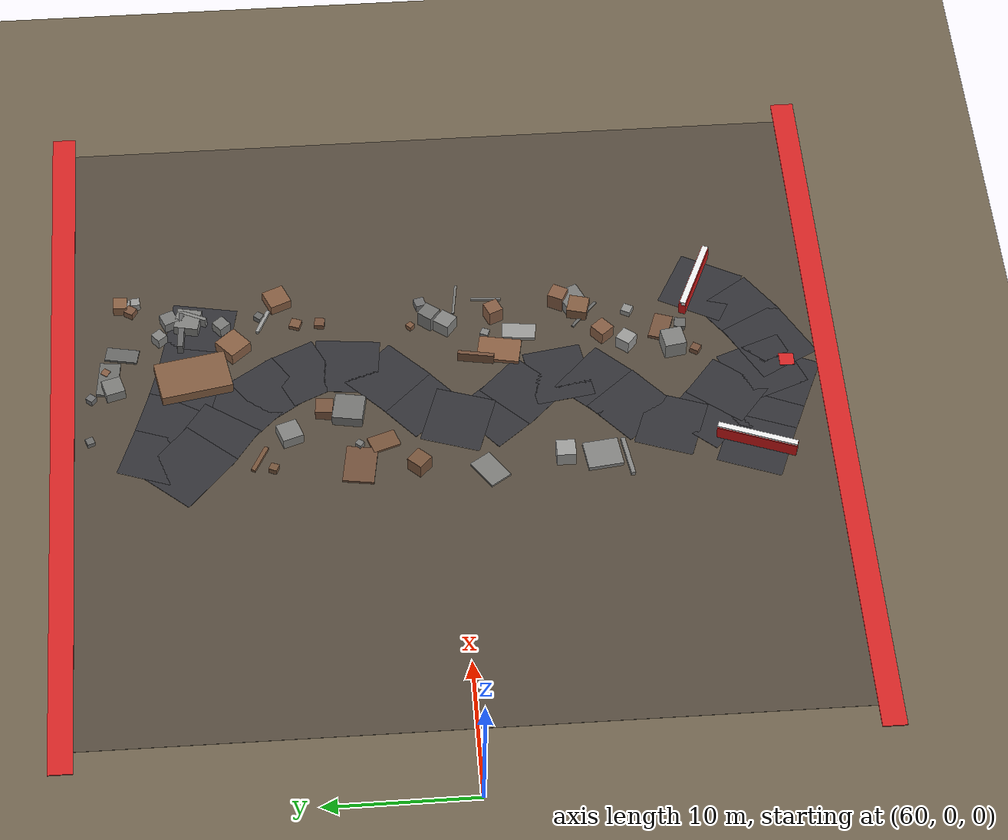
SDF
<sdf version="1.6">
 <world name="navitas_arena">
  <model name="ground_plane">
   <static>true</static>
   <link name="link">
    <collision name="collision">
     <geometry><plane><normal>0 0 1</normal><size>400 400</size></plane></geometry>
     <surface><friction><ode><mu>0.550</mu><mu2>0.550</mu2></ode></friction></surface>
    </collision>
    <visual name="visual">
     <cast_shadows>false</cast_shadows>
     <geometry><plane><normal>0 0 1</normal><size>400 400</size></plane></geometry>
     <material><ambient>0.450 0.400 0.320 1</ambient><diffuse>0.450 0.400 0.320 1</diffuse></material>
    </visual>
   </link>
  </model>
  <model name="gd_zor">
   <static>true</static>
   <pose>90.000 0.000 0.010 0 0 0.000</pose>
   <link name="link">
    <collision name="col"><geometry><box><size>50.000 50.000 0.020</size></box></geometry></collision>
    <visual name="vis">
     <geometry><box><size>50.000 50.000 0.020</size></box></geometry>
     <material><ambient>0.34 0.30 0.25 1</ambient><diffuse>0.34 0.30 0.25 1</diffuse></material>
    </visual>
   </link>
  </model>
  <model name="brd_zor_N">
   <static>true</static>
   <pose>90.000 25.800 0.040 0 0 0.000</pose>
   <link name="link">
    <collision name="col"><geometry><box><size>53.200 1.600 0.080</size></box></geometry></collision>
    <visual name="vis">
     <geometry><box><size>53.200 1.600 0.080</size></box></geometry>
     <material><ambient>0.85 0.15 0.15 1</ambient><diffuse>0.85 0.15 0.15 1</diffuse></material>
    </visual>
   </link>
  </model>
  <model name="brd_zor_S">
   <static>true</static>
   <pose>90.000 -25.800 0.040 0 0 0.000</pose>
   <link name="link">
    <collision name="col"><geometry><box><size>53.200 1.600 0.080</size></box></geometry></collision>
    <visual name="vis">
     <geometry><box><size>53.200 1.600 0.080</size></box></geometry>
     <material><ambient>0.85 0.15 0.15 1</ambient><diffuse>0.85 0.15 0.15 1</diffuse></material>
    </visual>
   </link>
  </model>
  <model name="road_zor_1_0">
   <static>true</static>
   <pose>91.597 -22.399 0.040 0 0 2.739</pose>
   <link name="link">
    <collision name="col"><geometry><box><size>3.970 4.400 0.020</size></box></geometry></collision>
    <visual name="vis">
     <geometry><box><size>3.970 4.400 0.020</size></box></geometry>
     <material><ambient>0.20 0.20 0.22 1</ambient><diffuse>0.20 0.20 0.22 1</diffuse></material>
    </visual>
   </link>
  </model>
  <model name="road_zor_1_1">
   <static>true</static>
   <pose>88.835 -21.236 0.040 0 0 2.747</pose>
   <link name="link">
    <collision name="col"><geometry><box><size>3.823 4.400 0.020</size></box></geometry></collision>
    <visual name="vis">
     <geometry><box><size>3.823 4.400 0.020</size></box></geometry>
     <material><ambient>0.20 0.20 0.22 1</ambient><diffuse>0.20 0.20 0.22 1</diffuse></material>
    </visual>
   </link>
  </model>
  <model name="road_zor_1_2">
   <static>true</static>
   <pose>85.970 -20.087 0.040 0 0 2.772</pose>
   <link name="link">
    <collision name="col"><geometry><box><size>4.150 4.400 0.020</size></box></geometry></collision>
    <visual name="vis">
     <geometry><box><size>4.150 4.400 0.020</size></box></geometry>
     <material><ambient>0.20 0.20 0.22 1</ambient><diffuse>0.20 0.20 0.22 1</diffuse></material>
    </visual>
   </link>
  </model>
  <model name="road_zor_2_0">
   <static>true</static>
   <pose>92.332 -21.250 0.040 0 0 1.940</pose>
   <link name="link">
    <collision name="col"><geometry><box><size>4.653 4.400 0.020</size></box></geometry></collision>
    <visual name="vis">
     <geometry><box><size>4.653 4.400 0.020</size></box></geometry>
     <material><ambient>0.20 0.20 0.22 1</ambient><diffuse>0.20 0.20 0.22 1</diffuse></material>
    </visual>
   </link>
  </model>
  <model name="road_zor_2_1">
   <static>true</static>
   <pose>90.647 -18.696 0.040 0 0 2.469</pose>
   <link name="link">
    <collision name="col"><geometry><box><size>3.479 4.400 0.020</size></box></geometry></collision>
    <visual name="vis">
     <geometry><box><size>3.479 4.400 0.020</size></box></geometry>
     <material><ambient>0.20 0.20 0.22 1</ambient><diffuse>0.20 0.20 0.22 1</diffuse></material>
    </visual>
   </link>
  </model>
  <model name="road_zor_2_2">
   <static>true</static>
   <pose>88.607 -16.984 0.040 0 0 2.420</pose>
   <link name="link">
    <collision name="col"><geometry><box><size>3.649 4.400 0.020</size></box></geometry></collision>
    <visual name="vis">
     <geometry><box><size>3.649 4.400 0.020</size></box></geometry>
     <material><ambient>0.20 0.20 0.22 1</ambient><diffuse>0.20 0.20 0.22 1</diffuse></material>
    </visual>
   </link>
  </model>
  <model name="road_zor_2_3">
   <static>true</static>
   <pose>88.101 -14.629 0.040 0 0 1.222</pose>
   <link name="link">
    <collision name="col"><geometry><box><size>3.979 4.400 0.020</size></box></geometry></collision>
    <visual name="vis">
     <geometry><box><size>3.979 4.400 0.020</size></box></geometry>
     <material><ambient>0.20 0.20 0.22 1</ambient><diffuse>0.20 0.20 0.22 1</diffuse></material>
    </visual>
   </link>
  </model>
  <model name="road_zor_2_4">
   <static>true</static>
   <pose>89.827 -12.157 0.040 0 0 0.708</pose>
   <link name="link">
    <collision name="col"><geometry><box><size>4.055 4.400 0.020</size></box></geometry></collision>
    <visual name="vis">
     <geometry><box><size>4.055 4.400 0.020</size></box></geometry>
     <material><ambient>0.20 0.20 0.22 1</ambient><diffuse>0.20 0.20 0.22 1</diffuse></material>
    </visual>
   </link>
  </model>
  <model name="road_zor_2_5">
   <static>true</static>
   <pose>92.029 -10.077 0.040 0 0 0.810</pose>
   <link name="link">
    <collision name="col"><geometry><box><size>3.812 4.400 0.020</size></box></geometry></collision>
    <visual name="vis">
     <geometry><box><size>3.812 4.400 0.020</size></box></geometry>
     <material><ambient>0.20 0.20 0.22 1</ambient><diffuse>0.20 0.20 0.22 1</diffuse></material>
    </visual>
   </link>
  </model>
  <model name="road_zor_2_6">
   <static>true</static>
   <pose>92.788 -7.511 0.040 0 0 1.732</pose>
   <link name="link">
    <collision name="col"><geometry><box><size>3.962 4.400 0.020</size></box></geometry></collision>
    <visual name="vis">
     <geometry><box><size>3.962 4.400 0.020</size></box></geometry>
     <material><ambient>0.20 0.20 0.22 1</ambient><diffuse>0.20 0.20 0.22 1</diffuse></material>
    </visual>
   </link>
  </model>
  <model name="road_zor_2_7">
   <static>true</static>
   <pose>91.530 -5.000 0.040 0 0 2.362</pose>
   <link name="link">
    <collision name="col"><geometry><box><size>3.745 4.400 0.020</size></box></geometry></collision>
    <visual name="vis">
     <geometry><box><size>3.745 4.400 0.020</size></box></geometry>
     <material><ambient>0.20 0.20 0.22 1</ambient><diffuse>0.20 0.20 0.22 1</diffuse></material>
    </visual>
   </link>
  </model>
  <model name="road_zor_2_8">
   <static>true</static>
   <pose>89.697 -3.000 0.040 0 0 2.259</pose>
   <link name="link">
    <collision name="col"><geometry><box><size>3.489 4.400 0.020</size></box></geometry></collision>
    <visual name="vis">
     <geometry><box><size>3.489 4.400 0.020</size></box></geometry>
     <material><ambient>0.20 0.20 0.22 1</ambient><diffuse>0.20 0.20 0.22 1</diffuse></material>
    </visual>
   </link>
  </model>
  <model name="road_zor_2_9">
   <static>true</static>
   <pose>89.377 -0.500 0.040 0 0 1.248</pose>
   <link name="link">
    <collision name="col"><geometry><box><size>4.064 4.400 0.020</size></box></geometry></collision>
    <visual name="vis">
     <geometry><box><size>4.064 4.400 0.020</size></box></geometry>
     <material><ambient>0.20 0.20 0.22 1</ambient><diffuse>0.20 0.20 0.22 1</diffuse></material>
    </visual>
   </link>
  </model>
  <model name="road_zor_2_10">
   <static>true</static>
   <pose>91.042 2.000 0.040 0 0 0.710</pose>
   <link name="link">
    <collision name="col"><geometry><box><size>3.967 4.400 0.020</size></box></geometry></collision>
    <visual name="vis">
     <geometry><box><size>3.967 4.400 0.020</size></box></geometry>
     <material><ambient>0.20 0.20 0.22 1</ambient><diffuse>0.20 0.20 0.22 1</diffuse></material>
    </visual>
   </link>
  </model>
  <model name="road_zor_2_11">
   <static>true</static>
   <pose>93.235 4.000 0.040 0 0 0.770</pose>
   <link name="link">
    <collision name="col"><geometry><box><size>3.772 4.400 0.020</size></box></geometry></collision>
    <visual name="vis">
     <geometry><box><size>3.772 4.400 0.020</size></box></geometry>
     <material><ambient>0.20 0.20 0.22 1</ambient><diffuse>0.20 0.20 0.22 1</diffuse></material>
    </visual>
   </link>
  </model>
  <model name="road_zor_2_12">
   <static>true</static>
   <pose>94.436 6.713 0.040 0 0 1.471</pose>
   <link name="link">
    <collision name="col"><geometry><box><size>4.343 4.400 0.020</size></box></geometry></collision>
    <visual name="vis">
     <geometry><box><size>4.343 4.400 0.020</size></box></geometry>
     <material><ambient>0.20 0.20 0.22 1</ambient><diffuse>0.20 0.20 0.22 1</diffuse></material>
    </visual>
   </link>
  </model>
  <model name="road_zor_2_13">
   <static>true</static>
   <pose>94.035 9.639 0.040 0 0 2.011</pose>
   <link name="link">
    <collision name="col"><geometry><box><size>3.582 4.400 0.020</size></box></geometry></collision>
    <visual name="vis">
     <geometry><box><size>3.582 4.400 0.020</size></box></geometry>
     <material><ambient>0.20 0.20 0.22 1</ambient><diffuse>0.20 0.20 0.22 1</diffuse></material>
    </visual>
   </link>
  </model>
  <model name="road_zor_2_14">
   <static>true</static>
   <pose>92.733 11.926 0.040 0 0 2.168</pose>
   <link name="link">
    <collision name="col"><geometry><box><size>3.498 4.400 0.020</size></box></geometry></collision>
    <visual name="vis">
     <geometry><box><size>3.498 4.400 0.020</size></box></geometry>
     <material><ambient>0.20 0.20 0.22 1</ambient><diffuse>0.20 0.20 0.22 1</diffuse></material>
    </visual>
   </link>
  </model>
  <model name="road_zor_2_15">
   <static>true</static>
   <pose>91.121 13.861 0.040 0 0 2.368</pose>
   <link name="link">
    <collision name="col"><geometry><box><size>3.364 4.400 0.020</size></box></geometry></collision>
    <visual name="vis">
     <geometry><box><size>3.364 4.400 0.020</size></box></geometry>
     <material><ambient>0.20 0.20 0.22 1</ambient><diffuse>0.20 0.20 0.22 1</diffuse></material>
    </visual>
   </link>
  </model>
  <model name="road_zor_2_16">
   <static>true</static>
   <pose>89.199 15.444 0.040 0 0 2.535</pose>
   <link name="link">
    <collision name="col"><geometry><box><size>3.433 4.400 0.020</size></box></geometry></collision>
    <visual name="vis">
     <geometry><box><size>3.433 4.400 0.020</size></box></geometry>
     <material><ambient>0.20 0.20 0.22 1</ambient><diffuse>0.20 0.20 0.22 1</diffuse></material>
    </visual>
   </link>
  </model>
  <model name="road_zor_2_17">
   <static>true</static>
   <pose>86.619 17.519 0.040 0 0 2.421</pose>
   <link name="link">
    <collision name="col"><geometry><box><size>4.999 4.400 0.020</size></box></geometry></collision>
    <visual name="vis">
     <geometry><box><size>4.999 4.400 0.020</size></box></geometry>
     <material><ambient>0.20 0.20 0.22 1</ambient><diffuse>0.20 0.20 0.22 1</diffuse></material>
    </visual>
   </link>
  </model>
  <model name="road_zor_3_0">
   <static>true</static>
   <pose>94.738 -22.070 0.040 0 0 0.494</pose>
   <link name="link">
    <collision name="col"><geometry><box><size>4.825 4.400 0.020</size></box></geometry></collision>
    <visual name="vis">
     <geometry><box><size>4.825 4.400 0.020</size></box></geometry>
     <material><ambient>0.20 0.20 0.22 1</ambient><diffuse>0.20 0.20 0.22 1</diffuse></material>
    </visual>
   </link>
  </model>
  <model name="road_zor_3_1">
   <static>true</static>
   <pose>97.661 -20.320 0.040 0 0 0.602</pose>
   <link name="link">
    <collision name="col"><geometry><box><size>3.798 4.400 0.020</size></box></geometry></collision>
    <visual name="vis">
     <geometry><box><size>3.798 4.400 0.020</size></box></geometry>
     <material><ambient>0.20 0.20 0.22 1</ambient><diffuse>0.20 0.20 0.22 1</diffuse></material>
    </visual>
   </link>
  </model>
  <model name="road_zor_3_2">
   <static>true</static>
   <pose>99.699 -17.912 0.040 0 0 1.082</pose>
   <link name="link">
    <collision name="col"><geometry><box><size>4.497 4.400 0.020</size></box></geometry></collision>
    <visual name="vis">
     <geometry><box><size>4.497 4.400 0.020</size></box></geometry>
     <material><ambient>0.20 0.20 0.22 1</ambient><diffuse>0.20 0.20 0.22 1</diffuse></material>
    </visual>
   </link>
  </model>
  <model name="road_zor_3_21">
   <static>true</static>
   <pose>98.405 16.435 0.040 0 0 2.952</pose>
   <link name="link">
    <collision name="col"><geometry><box><size>3.744 4.400 0.020</size></box></geometry></collision>
    <visual name="vis">
     <geometry><box><size>3.744 4.400 0.020</size></box></geometry>
     <material><ambient>0.20 0.20 0.22 1</ambient><diffuse>0.20 0.20 0.22 1</diffuse></material>
    </visual>
   </link>
  </model>
  <model name="road_zor_3_22">
   <static>true</static>
   <pose>95.794 16.969 0.040 0 0 2.927</pose>
   <link name="link">
    <collision name="col"><geometry><box><size>3.386 4.400 0.020</size></box></geometry></collision>
    <visual name="vis">
     <geometry><box><size>3.386 4.400 0.020</size></box></geometry>
     <material><ambient>0.20 0.20 0.22 1</ambient><diffuse>0.20 0.20 0.22 1</diffuse></material>
    </visual>
   </link>
  </model>
  <model name="road_zor_3_23">
   <static>true</static>
   <pose>93.232 17.622 0.040 0 0 2.861</pose>
   <link name="link">
    <collision name="col"><geometry><box><size>3.703 4.400 0.020</size></box></geometry></collision>
    <visual name="vis">
     <geometry><box><size>3.703 4.400 0.020</size></box></geometry>
     <material><ambient>0.20 0.20 0.22 1</ambient><diffuse>0.20 0.20 0.22 1</diffuse></material>
    </visual>
   </link>
  </model>
  <model name="road_zor_3_24">
   <static>true</static>
   <pose>90.334 18.524 0.040 0 0 2.821</pose>
   <link name="link">
    <collision name="col"><geometry><box><size>4.170 4.400 0.020</size></box></geometry></collision>
    <visual name="vis">
     <geometry><box><size>4.170 4.400 0.020</size></box></geometry>
     <material><ambient>0.20 0.20 0.22 1</ambient><diffuse>0.20 0.20 0.22 1</diffuse></material>
    </visual>
   </link>
  </model>
  <model name="road_zor_3_25">
   <static>true</static>
   <pose>87.469 19.514 0.040 0 0 2.795</pose>
   <link name="link">
    <collision name="col"><geometry><box><size>3.692 4.400 0.020</size></box></geometry></collision>
    <visual name="vis">
     <geometry><box><size>3.692 4.400 0.020</size></box></geometry>
     <material><ambient>0.20 0.20 0.22 1</ambient><diffuse>0.20 0.20 0.22 1</diffuse></material>
    </visual>
   </link>
  </model>
  <model name="bar_zor_1">
   <static>true</static>
   <pose>85.995 -20.083 0.500 0 0 4.350</pose>
   <link name="link">
    <collision name="col"><geometry><box><size>5.400 0.500 1.000</size></box></geometry></collision>
    <visual name="vis">
     <geometry><box><size>5.400 0.500 1.000</size></box></geometry>
     <material><ambient>0.85 0.10 0.10 1</ambient><diffuse>0.85 0.10 0.10 1</diffuse></material>
    </visual>
   </link>
  </model>
  <model name="bar_zor_1b">
   <static>true</static>
   <pose>85.995 -20.083 1.000 0 0 4.350</pose>
   <link name="link">
    <collision name="col"><geometry><box><size>5.400 0.400 0.300</size></box></geometry></collision>
    <visual name="vis">
     <geometry><box><size>5.400 0.400 0.300</size></box></geometry>
     <material><ambient>0.95 0.95 0.95 1</ambient><diffuse>0.95 0.95 0.95 1</diffuse></material>
    </visual>
   </link>
  </model>
  <model name="bar_zor_3">
   <static>true</static>
   <pose>100.046 -17.469 0.500 0 0 2.732</pose>
   <link name="link">
    <collision name="col"><geometry><box><size>5.400 0.500 1.000</size></box></geometry></collision>
    <visual name="vis">
     <geometry><box><size>5.400 0.500 1.000</size></box></geometry>
     <material><ambient>0.85 0.10 0.10 1</ambient><diffuse>0.85 0.10 0.10 1</diffuse></material>
    </visual>
   </link>
  </model>
  <model name="bar_zor_3b">
   <static>true</static>
   <pose>100.046 -17.469 1.000 0 0 2.732</pose>
   <link name="link">
    <collision name="col"><geometry><box><size>5.400 0.400 0.300</size></box></geometry></collision>
    <visual name="vis">
     <geometry><box><size>5.400 0.400 0.300</size></box></geometry>
     <material><ambient>0.95 0.95 0.95 1</ambient><diffuse>0.95 0.95 0.95 1</diffuse></material>
    </visual>
   </link>
  </model>
  <model name="blk_zor_3_2_0">
   <static>true</static>
   <pose>98.198 15.019 0.400 0 0 2.259</pose>
   <link name="link">
    <collision name="col"><geometry><box><size>0.882 0.882 0.800</size></box></geometry></collision>
    <visual name="vis">
     <geometry><box><size>0.882 0.882 0.800</size></box></geometry>
     <material><ambient>0.48 0.48 0.47 1</ambient><diffuse>0.48 0.48 0.47 1</diffuse></material>
    </visual>
   </link>
  </model>
  <model name="blk_zor_3_2_1">
   <static>true</static>
   <pose>99.076 17.009 0.400 0 0 1.139</pose>
   <link name="link">
    <collision name="col"><geometry><box><size>2.122 0.255 0.800</size></box></geometry></collision>
    <visual name="vis">
     <geometry><box><size>2.122 0.255 0.800</size></box></geometry>
     <material><ambient>0.53 0.53 0.52 1</ambient><diffuse>0.53 0.53 0.52 1</diffuse></material>
    </visual>
   </link>
  </model>
  <model name="blk_zor_3_2_2">
   <static>true</static>
   <pose>98.737 17.278 0.400 0 0 2.937</pose>
   <link name="link">
    <collision name="col"><geometry><box><size>1.651 1.651 0.800</size></box></geometry></collision>
    <visual name="vis">
     <geometry><box><size>1.651 1.651 0.800</size></box></geometry>
     <material><ambient>0.51 0.51 0.50 1</ambient><diffuse>0.51 0.51 0.50 1</diffuse></material>
    </visual>
   </link>
  </model>
  <model name="blk_zor_3_2_3">
   <static>true</static>
   <pose>96.343 14.267 0.465 0 0 0.716</pose>
   <link name="link">
    <collision name="col"><geometry><box><size>1.696 1.696 0.930</size></box></geometry></collision>
    <visual name="vis">
     <geometry><box><size>1.696 1.696 0.930</size></box></geometry>
     <material><ambient>0.54 0.38 0.27 1</ambient><diffuse>0.54 0.38 0.27 1</diffuse></material>
    </visual>
   </link>
  </model>
  <model name="blk_zor_3_2_4">
   <static>true</static>
   <pose>97.433 19.236 0.400 0 0 2.275</pose>
   <link name="link">
    <collision name="col"><geometry><box><size>0.767 0.767 0.800</size></box></geometry></collision>
    <visual name="vis">
     <geometry><box><size>0.767 0.767 0.800</size></box></geometry>
     <material><ambient>0.52 0.52 0.51 1</ambient><diffuse>0.52 0.52 0.51 1</diffuse></material>
    </visual>
   </link>
  </model>
  <model name="blk_zor_3_2_5">
   <static>true</static>
   <pose>98.906 18.561 0.400 0 0 1.975</pose>
   <link name="link">
    <collision name="col"><geometry><box><size>1.002 1.002 0.800</size></box></geometry></collision>
    <visual name="vis">
     <geometry><box><size>1.002 1.002 0.800</size></box></geometry>
     <material><ambient>0.48 0.48 0.47 1</ambient><diffuse>0.48 0.48 0.47 1</diffuse></material>
    </visual>
   </link>
  </model>
  <model name="blk_zor_3_2_6">
   <static>true</static>
   <pose>97.850 17.729 0.400 0 0 3.069</pose>
   <link name="link">
    <collision name="col"><geometry><box><size>2.920 0.400 0.800</size></box></geometry></collision>
    <visual name="vis">
     <geometry><box><size>2.920 0.400 0.800</size></box></geometry>
     <material><ambient>0.40 0.40 0.40 1</ambient><diffuse>0.40 0.40 0.40 1</diffuse></material>
    </visual>
   </link>
  </model>
  <model name="deb_zor_4">
   <static>true</static>
   <pose>85.429 -11.448 0.157 0 0 0.143</pose>
   <link name="link">
    <collision name="col"><geometry><box><size>2.974 0.292 0.313</size></box></geometry></collision>
    <visual name="vis">
     <geometry><box><size>2.974 0.292 0.313</size></box></geometry>
     <material><ambient>0.53 0.53 0.52 1</ambient><diffuse>0.53 0.53 0.52 1</diffuse></material>
    </visual>
   </link>
  </model>
  <model name="deb_zor_6">
   <static>true</static>
   <pose>92.563 23.852 0.228 0 0 0.870</pose>
   <link name="link">
    <collision name="col"><geometry><box><size>0.524 0.524 0.456</size></box></geometry></collision>
    <visual name="vis">
     <geometry><box><size>0.524 0.524 0.456</size></box></geometry>
     <material><ambient>0.43 0.43 0.43 1</ambient><diffuse>0.43 0.43 0.43 1</diffuse></material>
    </visual>
   </link>
  </model>
  <model name="deb_zor_12">
   <static>true</static>
   <pose>99.780 -0.956 0.078 0 0 2.998</pose>
   <link name="link">
    <collision name="col"><geometry><box><size>2.488 0.160 0.157</size></box></geometry></collision>
    <visual name="vis">
     <geometry><box><size>2.488 0.160 0.157</size></box></geometry>
     <material><ambient>0.49 0.49 0.48 1</ambient><diffuse>0.49 0.49 0.48 1</diffuse></material>
    </visual>
   </link>
  </model>
  <model name="deb_zor_13">
   <static>true</static>
   <pose>85.543 2.308 0.548 0 0 0.817</pose>
   <link name="link">
    <collision name="col"><geometry><box><size>1.165 1.165 1.095</size></box></geometry></collision>
    <visual name="vis">
     <geometry><box><size>1.165 1.165 1.095</size></box></geometry>
     <material><ambient>0.47 0.33 0.23 1</ambient><diffuse>0.47 0.33 0.23 1</diffuse></material>
    </visual>
   </link>
  </model>
  <model name="deb_zor_14">
   <static>true</static>
   <pose>94.231 -16.939 0.212 0 0 1.026</pose>
   <link name="link">
    <collision name="col"><geometry><box><size>0.603 0.603 0.424</size></box></geometry></collision>
    <visual name="vis">
     <geometry><box><size>0.603 0.603 0.424</size></box></geometry>
     <material><ambient>0.46 0.32 0.23 1</ambient><diffuse>0.46 0.32 0.23 1</diffuse></material>
    </visual>
   </link>
  </model>
  <model name="deb_zor_16">
   <static>true</static>
   <pose>97.876 -9.710 0.066 0 0 2.429</pose>
   <link name="link">
    <collision name="col"><geometry><box><size>2.697 0.192 0.132</size></box></geometry></collision>
    <visual name="vis">
     <geometry><box><size>2.697 0.192 0.132</size></box></geometry>
     <material><ambient>0.41 0.41 0.40 1</ambient><diffuse>0.41 0.41 0.40 1</diffuse></material>
    </visual>
   </link>
  </model>
  <model name="deb_zor_19">
   <static>true</static>
   <pose>93.697 22.288 0.213 0 0 0.580</pose>
   <link name="link">
    <collision name="col"><geometry><box><size>0.503 0.503 0.425</size></box></geometry></collision>
    <visual name="vis">
     <geometry><box><size>0.503 0.503 0.425</size></box></geometry>
     <material><ambient>0.51 0.51 0.50 1</ambient><diffuse>0.51 0.51 0.50 1</diffuse></material>
    </visual>
   </link>
  </model>
  <model name="deb_zor_25">
   <static>true</static>
   <pose>94.861 22.893 0.128 0 0 2.557</pose>
   <link name="link">
    <collision name="col"><geometry><box><size>0.514 0.514 0.256</size></box></geometry></collision>
    <visual name="vis">
     <geometry><box><size>0.514 0.514 0.256</size></box></geometry>
     <material><ambient>0.53 0.37 0.27 1</ambient><diffuse>0.53 0.37 0.27 1</diffuse></material>
    </visual>
   </link>
  </model>
  <model name="deb_zor_28">
   <static>true</static>
   <pose>90.594 8.356 0.399 0 0 1.478</pose>
   <link name="link">
    <collision name="col"><geometry><box><size>1.160 1.160 0.798</size></box></geometry></collision>
    <visual name="vis">
     <geometry><box><size>1.160 1.160 0.798</size></box></geometry>
     <material><ambient>0.47 0.33 0.24 1</ambient><diffuse>0.47 0.33 0.24 1</diffuse></material>
    </visual>
   </link>
  </model>
  <model name="deb_zor_31">
   <static>true</static>
   <pose>95.035 -12.293 0.505 0 0 2.454</pose>
   <link name="link">
    <collision name="col"><geometry><box><size>1.034 1.034 1.011</size></box></geometry></collision>
    <visual name="vis">
     <geometry><box><size>1.034 1.034 1.011</size></box></geometry>
     <material><ambient>0.61 0.61 0.60 1</ambient><diffuse>0.61 0.61 0.60 1</diffuse></material>
    </visual>
   </link>
  </model>
  <model name="deb_zor_41">
   <static>true</static>
   <pose>88.633 10.733 0.414 0 0 1.902</pose>
   <link name="link">
    <collision name="col"><geometry><box><size>1.434 1.434 0.827</size></box></geometry></collision>
    <visual name="vis">
     <geometry><box><size>1.434 1.434 0.827</size></box></geometry>
     <material><ambient>0.51 0.51 0.50 1</ambient><diffuse>0.51 0.51 0.50 1</diffuse></material>
    </visual>
   </link>
  </model>
  <model name="deb_zor_44">
   <static>true</static>
   <pose>98.210 8.349 0.194 0 0 1.415</pose>
   <link name="link">
    <collision name="col"><geometry><box><size>0.679 0.679 0.387</size></box></geometry></collision>
    <visual name="vis">
     <geometry><box><size>0.679 0.679 0.387</size></box></geometry>
     <material><ambient>0.46 0.32 0.23 1</ambient><diffuse>0.46 0.32 0.23 1</diffuse></material>
    </visual>
   </link>
  </model>
  <model name="deb_zor_45">
   <static>true</static>
   <pose>85.721 -9.825 0.155 0 0 1.695</pose>
   <link name="link">
    <collision name="col"><geometry><box><size>2.364 2.124 0.309</size></box></geometry></collision>
    <visual name="vis">
     <geometry><box><size>2.364 2.124 0.309</size></box></geometry>
     <material><ambient>0.52 0.52 0.51 1</ambient><diffuse>0.52 0.52 0.51 1</diffuse></material>
    </visual>
   </link>
  </model>
  <model name="deb_zor_47">
   <static>true</static>
   <pose>85.009 -2.326 0.081 0 0 0.593</pose>
   <link name="link">
    <collision name="col"><geometry><box><size>2.315 1.572 0.162</size></box></geometry></collision>
    <visual name="vis">
     <geometry><box><size>2.315 1.572 0.162</size></box></geometry>
     <material><ambient>0.49 0.49 0.48 1</ambient><diffuse>0.49 0.49 0.48 1</diffuse></material>
    </visual>
   </link>
  </model>
  <model name="deb_zor_48">
   <static>true</static>
   <pose>94.542 -15.420 0.638 0 0 0.164</pose>
   <link name="link">
    <collision name="col"><geometry><box><size>1.468 1.468 1.276</size></box></geometry></collision>
    <visual name="vis">
     <geometry><box><size>1.468 1.468 1.276</size></box></geometry>
     <material><ambient>0.51 0.51 0.50 1</ambient><diffuse>0.51 0.51 0.50 1</diffuse></material>
    </visual>
   </link>
  </model>
  <model name="deb_zor_51">
   <static>true</static>
   <pose>85.758 -7.355 0.543 0 0 1.570</pose>
   <link name="link">
    <collision name="col"><geometry><box><size>1.260 1.260 1.086</size></box></geometry></collision>
    <visual name="vis">
     <geometry><box><size>1.260 1.260 1.086</size></box></geometry>
     <material><ambient>0.62 0.62 0.61 1</ambient><diffuse>0.62 0.62 0.61 1</diffuse></material>
    </visual>
   </link>
  </model>
  <model name="deb_zor_54">
   <static>true</static>
   <pose>97.923 0.918 0.621 0 0 2.486</pose>
   <link name="link">
    <collision name="col"><geometry><box><size>1.096 1.096 1.242</size></box></geometry></collision>
    <visual name="vis">
     <geometry><box><size>1.096 1.096 1.242</size></box></geometry>
     <material><ambient>0.45 0.45 0.44 1</ambient><diffuse>0.45 0.45 0.44 1</diffuse></material>
    </visual>
   </link>
  </model>
  <model name="deb_zor_59">
   <static>true</static>
   <pose>86.864 12.771 0.123 0 0 2.667</pose>
   <link name="link">
    <collision name="col"><geometry><box><size>2.076 0.293 0.245</size></box></geometry></collision>
    <visual name="vis">
     <geometry><box><size>2.076 0.293 0.245</size></box></geometry>
     <material><ambient>0.47 0.33 0.23 1</ambient><diffuse>0.47 0.33 0.23 1</diffuse></material>
    </visual>
   </link>
  </model>
  <model name="deb_zor_61">
   <static>true</static>
   <pose>96.326 -14.787 0.143 0 0 2.809</pose>
   <link name="link">
    <collision name="col"><geometry><box><size>2.034 1.255 0.287</size></box></geometry></collision>
    <visual name="vis">
     <geometry><box><size>2.034 1.255 0.287</size></box></geometry>
     <material><ambient>0.47 0.33 0.24 1</ambient><diffuse>0.47 0.33 0.24 1</diffuse></material>
    </visual>
   </link>
  </model>
  <model name="deb_zor_68">
   <static>true</static>
   <pose>100.669 21.545 0.217 0 0 1.585</pose>
   <link name="link">
    <collision name="col"><geometry><box><size>0.669 0.669 0.434</size></box></geometry></collision>
    <visual name="vis">
     <geometry><box><size>0.669 0.669 0.434</size></box></geometry>
     <material><ambient>0.56 0.56 0.55 1</ambient><diffuse>0.56 0.56 0.55 1</diffuse></material>
    </visual>
   </link>
  </model>
  <model name="deb_zor_69">
   <static>true</static>
   <pose>98.261 9.986 0.166 0 0 2.803</pose>
   <link name="link">
    <collision name="col"><geometry><box><size>0.722 0.722 0.331</size></box></geometry></collision>
    <visual name="vis">
     <geometry><box><size>0.722 0.722 0.331</size></box></geometry>
     <material><ambient>0.50 0.35 0.25 1</ambient><diffuse>0.50 0.35 0.25 1</diffuse></material>
    </visual>
   </link>
  </model>
  <model name="deb_zor_71">
   <static>true</static>
   <pose>96.470 -16.118 0.211 0 0 2.988</pose>
   <link name="link">
    <collision name="col"><geometry><box><size>0.758 0.758 0.422</size></box></geometry></collision>
    <visual name="vis">
     <geometry><box><size>0.758 0.758 0.422</size></box></geometry>
     <material><ambient>0.42 0.42 0.41 1</ambient><diffuse>0.42 0.42 0.41 1</diffuse></material>
    </visual>
   </link>
  </model>
  <model name="deb_zor_79">
   <static>true</static>
   <pose>95.978 -10.748 0.499 0 0 2.276</pose>
   <link name="link">
    <collision name="col"><geometry><box><size>1.101 1.101 0.998</size></box></geometry></collision>
    <visual name="vis">
     <geometry><box><size>1.101 1.101 0.998</size></box></geometry>
     <material><ambient>0.53 0.37 0.27 1</ambient><diffuse>0.53 0.37 0.27 1</diffuse></material>
    </visual>
   </link>
  </model>
  <model name="deb_zor_92">
   <static>true</static>
   <pose>87.560 6.140 0.232 0 0 0.849</pose>
   <link name="link">
    <collision name="col"><geometry><box><size>0.445 0.445 0.464</size></box></geometry></collision>
    <visual name="vis">
     <geometry><box><size>0.445 0.445 0.464</size></box></geometry>
     <material><ambient>0.47 0.47 0.46 1</ambient><diffuse>0.47 0.47 0.46 1</diffuse></material>
    </visual>
   </link>
  </model>
  <model name="deb_zor_96">
   <static>true</static>
   <pose>98.074 -3.471 0.597 0 0 1.976</pose>
   <link name="link">
    <collision name="col"><geometry><box><size>1.017 1.017 1.194</size></box></geometry></collision>
    <visual name="vis">
     <geometry><box><size>1.017 1.017 1.194</size></box></geometry>
     <material><ambient>0.53 0.37 0.27 1</ambient><diffuse>0.53 0.37 0.27 1</diffuse></material>
    </visual>
   </link>
  </model>
  <model name="deb_zor_97">
   <static>true</static>
   <pose>96.613 -5.139 0.124 0 0 1.472</pose>
   <link name="link">
    <collision name="col"><geometry><box><size>2.256 1.238 0.248</size></box></geometry></collision>
    <visual name="vis">
     <geometry><box><size>2.256 1.238 0.248</size></box></geometry>
     <material><ambient>0.61 0.61 0.60 1</ambient><diffuse>0.61 0.61 0.60 1</diffuse></material>
    </visual>
   </link>
  </model>
  <model name="deb_zor_99">
   <static>true</static>
   <pose>99.686 -3.113 0.078 0 0 1.492</pose>
   <link name="link">
    <collision name="col"><geometry><box><size>2.049 0.153 0.157</size></box></geometry></collision>
    <visual name="vis">
     <geometry><box><size>2.049 0.153 0.157</size></box></geometry>
     <material><ambient>0.55 0.55 0.54 1</ambient><diffuse>0.55 0.55 0.54 1</diffuse></material>
    </visual>
   </link>
  </model>
  <model name="deb_zor_102">
   <static>true</static>
   <pose>98.212 -9.312 0.417 0 0 2.883</pose>
   <link name="link">
    <collision name="col"><geometry><box><size>1.362 1.362 0.834</size></box></geometry></collision>
    <visual name="vis">
     <geometry><box><size>1.362 1.362 0.834</size></box></geometry>
     <material><ambient>0.52 0.37 0.26 1</ambient><diffuse>0.52 0.37 0.26 1</diffuse></material>
    </visual>
   </link>
  </model>
  <model name="deb_zor_110">
   <static>true</static>
   <pose>100.525 21.868 0.368 0 0 3.120</pose>
   <link name="link">
    <collision name="col"><geometry><box><size>0.947 0.947 0.736</size></box></geometry></collision>
    <visual name="vis">
     <geometry><box><size>0.947 0.947 0.736</size></box></geometry>
     <material><ambient>0.54 0.38 0.27 1</ambient><diffuse>0.54 0.38 0.27 1</diffuse></material>
    </visual>
   </link>
  </model>
  <model name="deb_zor_113">
   <static>true</static>
   <pose>97.350 -0.158 0.520 0 0 2.489</pose>
   <link name="link">
    <collision name="col"><geometry><box><size>1.163 1.163 1.039</size></box></geometry></collision>
    <visual name="vis">
     <geometry><box><size>1.163 1.163 1.039</size></box></geometry>
     <material><ambient>0.52 0.52 0.51 1</ambient><diffuse>0.52 0.52 0.51 1</diffuse></material>
    </visual>
   </link>
  </model>
  <model name="deb_zor_115">
   <static>true</static>
   <pose>100.017 21.182 0.261 0 0 1.003</pose>
   <link name="link">
    <collision name="col"><geometry><box><size>0.659 0.659 0.522</size></box></geometry></collision>
    <visual name="vis">
     <geometry><box><size>0.659 0.659 0.522</size></box></geometry>
     <material><ambient>0.49 0.34 0.25 1</ambient><diffuse>0.49 0.34 0.25 1</diffuse></material>
    </visual>
   </link>
  </model>
  <model name="deb_zor_117">
   <static>true</static>
   <pose>95.066 -3.671 0.151 0 0 1.383</pose>
   <link name="link">
    <collision name="col"><geometry><box><size>2.870 1.921 0.301</size></box></geometry></collision>
    <visual name="vis">
     <geometry><box><size>2.870 1.921 0.301</size></box></geometry>
     <material><ambient>0.55 0.38 0.27 1</ambient><diffuse>0.55 0.38 0.27 1</diffuse></material>
    </visual>
   </link>
  </model>
  <model name="deb_zor_119">
   <static>true</static>
   <pose>89.009 23.936 0.173 0 0 1.940</pose>
   <link name="link">
    <collision name="col"><geometry><box><size>0.537 0.537 0.346</size></box></geometry></collision>
    <visual name="vis">
     <geometry><box><size>0.537 0.537 0.346</size></box></geometry>
     <material><ambient>0.42 0.42 0.41 1</ambient><diffuse>0.42 0.42 0.41 1</diffuse></material>
    </visual>
   </link>
  </model>
  <model name="deb_zor_120">
   <static>true</static>
   <pose>85.967 11.871 0.220 0 0 2.726</pose>
   <link name="link">
    <collision name="col"><geometry><box><size>0.553 0.553 0.440</size></box></geometry></collision>
    <visual name="vis">
     <geometry><box><size>0.553 0.553 0.440</size></box></geometry>
     <material><ambient>0.46 0.33 0.23 1</ambient><diffuse>0.46 0.33 0.23 1</diffuse></material>
    </visual>
   </link>
  </model>
  <model name="deb_zor_124">
   <static>true</static>
   <pose>97.932 -12.649 0.226 0 0 2.646</pose>
   <link name="link">
    <collision name="col"><geometry><box><size>0.658 0.658 0.453</size></box></geometry></collision>
    <visual name="vis">
     <geometry><box><size>0.658 0.658 0.453</size></box></geometry>
     <material><ambient>0.57 0.57 0.56 1</ambient><diffuse>0.57 0.57 0.56 1</diffuse></material>
    </visual>
   </link>
  </model>
  <model name="deb_zor_125">
   <static>true</static>
   <pose>100.338 11.189 0.375 0 0 1.974</pose>
   <link name="link">
    <collision name="col"><geometry><box><size>1.502 1.502 0.750</size></box></geometry></collision>
    <visual name="vis">
     <geometry><box><size>1.502 1.502 0.750</size></box></geometry>
     <material><ambient>0.53 0.37 0.26 1</ambient><diffuse>0.53 0.37 0.26 1</diffuse></material>
    </visual>
   </link>
  </model>
  <model name="deb_zor_127">
   <static>true</static>
   <pose>87.790 4.539 0.098 0 0 1.900</pose>
   <link name="link">
    <collision name="col"><geometry><box><size>1.901 1.284 0.197</size></box></geometry></collision>
    <visual name="vis">
     <geometry><box><size>1.901 1.284 0.197</size></box></geometry>
     <material><ambient>0.47 0.33 0.23 1</ambient><diffuse>0.47 0.33 0.23 1</diffuse></material>
    </visual>
   </link>
  </model>
  <model name="deb_zor_137">
   <static>true</static>
   <pose>96.354 21.791 0.092 0 0 1.380</pose>
   <link name="link">
    <collision name="col"><geometry><box><size>2.199 1.076 0.184</size></box></geometry></collision>
    <visual name="vis">
     <geometry><box><size>2.199 1.076 0.184</size></box></geometry>
     <material><ambient>0.41 0.41 0.40 1</ambient><diffuse>0.41 0.41 0.40 1</diffuse></material>
    </visual>
   </link>
  </model>
  <model name="deb_zor_140">
   <static>true</static>
   <pose>98.658 12.207 0.122 0 0 2.710</pose>
   <link name="link">
    <collision name="col"><geometry><box><size>1.990 0.237 0.244</size></box></geometry></collision>
    <visual name="vis">
     <geometry><box><size>1.990 0.237 0.244</size></box></geometry>
     <material><ambient>0.62 0.62 0.61 1</ambient><diffuse>0.62 0.62 0.61 1</diffuse></material>
    </visual>
   </link>
  </model>
  <model name="deb_zor_154">
   <static>true</static>
   <pose>93.212 22.357 0.400 0 0 1.857</pose>
   <link name="link">
    <collision name="col"><geometry><box><size>1.304 1.304 0.800</size></box></geometry></collision>
    <visual name="vis">
     <geometry><box><size>1.304 1.304 0.800</size></box></geometry>
     <material><ambient>0.49 0.49 0.48 1</ambient><diffuse>0.49 0.49 0.48 1</diffuse></material>
    </visual>
   </link>
  </model>
  <model name="deb_zor_157">
   <static>true</static>
   <pose>98.982 -8.916 0.414 0 0 1.980</pose>
   <link name="link">
    <collision name="col"><geometry><box><size>1.556 1.556 0.827</size></box></geometry></collision>
    <visual name="vis">
     <geometry><box><size>1.556 1.556 0.827</size></box></geometry>
     <material><ambient>0.48 0.48 0.47 1</ambient><diffuse>0.48 0.48 0.47 1</diffuse></material>
    </visual>
   </link>
  </model>
  <model name="deb_zor_168">
   <static>true</static>
   <pose>85.968 6.197 0.096 0 0 2.990</pose>
   <link name="link">
    <collision name="col"><geometry><box><size>2.866 2.095 0.192</size></box></geometry></collision>
    <visual name="vis">
     <geometry><box><size>2.866 2.095 0.192</size></box></geometry>
     <material><ambient>0.45 0.32 0.23 1</ambient><diffuse>0.45 0.32 0.23 1</diffuse></material>
    </visual>
   </link>
  </model>
  <model name="deb_zor_169">
   <static>true</static>
   <pose>96.655 -2.832 0.142 0 0 1.145</pose>
   <link name="link">
    <collision name="col"><geometry><box><size>0.537 0.537 0.284</size></box></geometry></collision>
    <visual name="vis">
     <geometry><box><size>0.537 0.537 0.284</size></box></geometry>
     <material><ambient>0.52 0.52 0.51 1</ambient><diffuse>0.52 0.52 0.51 1</diffuse></material>
    </visual>
   </link>
  </model>
  <model name="deb_zor_170">
   <static>true</static>
   <pose>99.021 12.455 0.215 0 0 2.496</pose>
   <link name="link">
    <collision name="col"><geometry><box><size>0.528 0.528 0.431</size></box></geometry></collision>
    <visual name="vis">
     <geometry><box><size>0.528 0.528 0.431</size></box></geometry>
     <material><ambient>0.41 0.41 0.40 1</ambient><diffuse>0.41 0.41 0.40 1</diffuse></material>
    </visual>
   </link>
  </model>
  <model name="deb_zor_171">
   <static>true</static>
   <pose>99.398 1.448 0.259 0 0 0.241</pose>
   <link name="link">
    <collision name="col"><geometry><box><size>0.706 0.706 0.517</size></box></geometry></collision>
    <visual name="vis">
     <geometry><box><size>0.706 0.706 0.517</size></box></geometry>
     <material><ambient>0.44 0.44 0.44 1</ambient><diffuse>0.44 0.44 0.44 1</diffuse></material>
    </visual>
   </link>
  </model>
  <model name="deb_zor_176">
   <static>true</static>
   <pose>94.312 22.713 0.101 0 0 3.036</pose>
   <link name="link">
    <collision name="col"><geometry><box><size>2.717 1.393 0.203</size></box></geometry></collision>
    <visual name="vis">
     <geometry><box><size>2.717 1.393 0.203</size></box></geometry>
     <material><ambient>0.43 0.43 0.42 1</ambient><diffuse>0.43 0.43 0.42 1</diffuse></material>
    </visual>
   </link>
  </model>
  <model name="deb_zor_177">
   <static>true</static>
   <pose>100.720 20.852 0.268 0 0 1.689</pose>
   <link name="link">
    <collision name="col"><geometry><box><size>0.610 0.610 0.535</size></box></geometry></collision>
    <visual name="vis">
     <geometry><box><size>0.610 0.610 0.535</size></box></geometry>
     <material><ambient>0.60 0.60 0.59 1</ambient><diffuse>0.60 0.60 0.59 1</diffuse></material>
    </visual>
   </link>
  </model>
  <model name="deb_zor_181">
   <static>true</static>
   <pose>99.029 -7.991 0.617 0 0 2.662</pose>
   <link name="link">
    <collision name="col"><geometry><box><size>1.092 1.092 1.233</size></box></geometry></collision>
    <visual name="vis">
     <geometry><box><size>1.092 1.092 1.233</size></box></geometry>
     <material><ambient>0.53 0.37 0.27 1</ambient><diffuse>0.53 0.37 0.27 1</diffuse></material>
    </visual>
   </link>
  </model>
  <model name="deb_zor_185">
   <static>true</static>
   <pose>97.527 2.200 0.195 0 0 2.353</pose>
   <link name="link">
    <collision name="col"><geometry><box><size>0.436 0.436 0.390</size></box></geometry></collision>
    <visual name="vis">
     <geometry><box><size>0.436 0.436 0.390</size></box></geometry>
     <material><ambient>0.50 0.35 0.25 1</ambient><diffuse>0.50 0.35 0.25 1</diffuse></material>
    </visual>
   </link>
  </model>
  <model name="chic_zor_1">
   <static>true</static>
   <pose>94.371 -2.042 0.400 0 0 1.395</pose>
   <link name="link">
    <collision name="col"><geometry><box><size>2.446 0.276 0.800</size></box></geometry></collision>
    <visual name="vis">
     <geometry><box><size>2.446 0.276 0.800</size></box></geometry>
     <material><ambient>0.46 0.32 0.23 1</ambient><diffuse>0.46 0.32 0.23 1</diffuse></material>
    </visual>
   </link>
  </model>
  <model name="chic_zor_2">
   <static>true</static>
   <pose>90.363 6.726 0.417 0 0 2.968</pose>
   <link name="link">
    <collision name="col"><geometry><box><size>2.023 2.023 0.833</size></box></geometry></collision>
    <visual name="vis">
     <geometry><box><size>2.023 2.023 0.833</size></box></geometry>
     <material><ambient>0.46 0.46 0.45 1</ambient><diffuse>0.46 0.46 0.45 1</diffuse></material>
    </visual>
   </link>
  </model>
  <model name="chic_zor_3">
   <static>true</static>
   <pose>93.830 17.000 0.400 0 0 1.757</pose>
   <link name="link">
    <collision name="col"><geometry><box><size>4.836 2.998 0.800</size></box></geometry></collision>
    <visual name="vis">
     <geometry><box><size>4.836 2.998 0.800</size></box></geometry>
     <material><ambient>0.52 0.37 0.26 1</ambient><diffuse>0.52 0.37 0.26 1</diffuse></material>
    </visual>
   </link>
  </model>
  <model name="kb_zor">
   <static>true</static>
   <pose>93.009 -23.000 0.070 0 0 0.000</pose>
   <link name="link">
    <collision name="col"><geometry><box><size>1.000 1.000 0.040</size></box></geometry></collision>
    <visual name="vis">
     <geometry><box><size>1.000 1.000 0.040</size></box></geometry>
     <material><ambient>0.85 0.15 0.15 1</ambient><diffuse>0.85 0.15 0.15 1</diffuse></material>
    </visual>
   </link>
  </model>
 </world>
</sdf>
